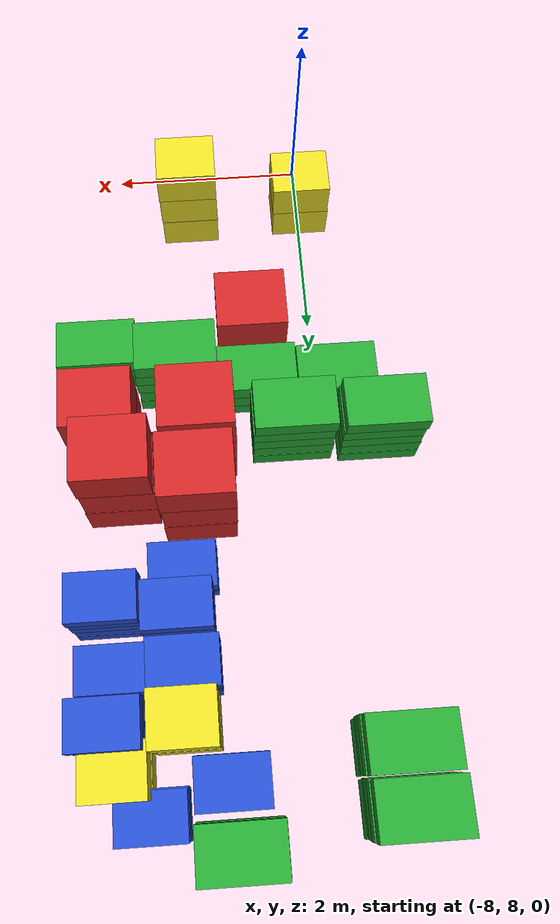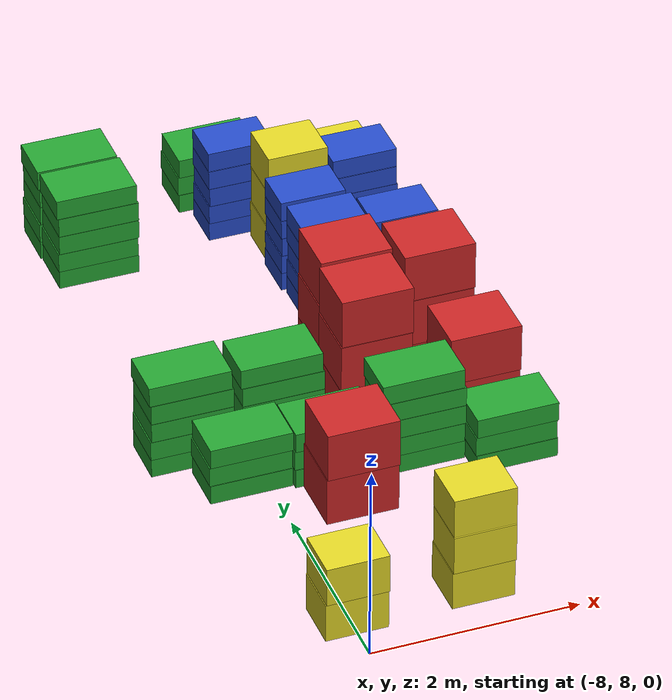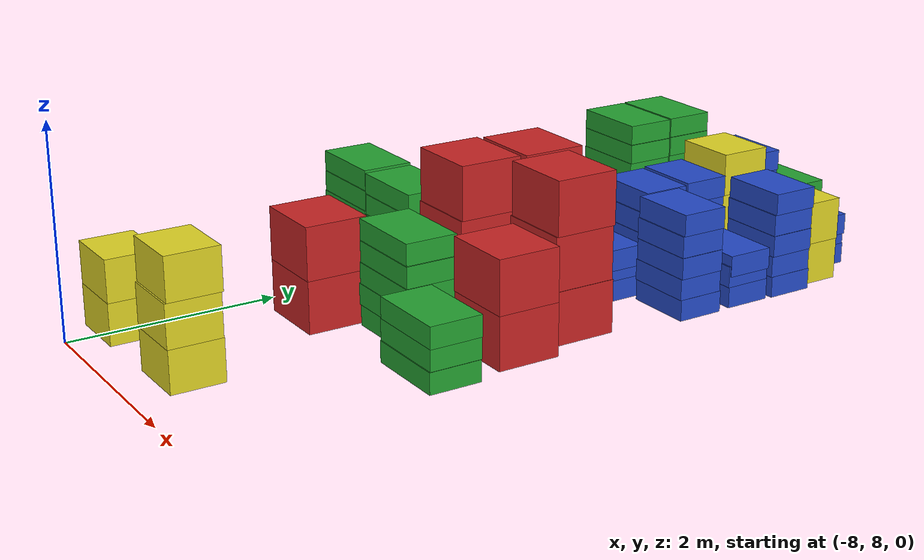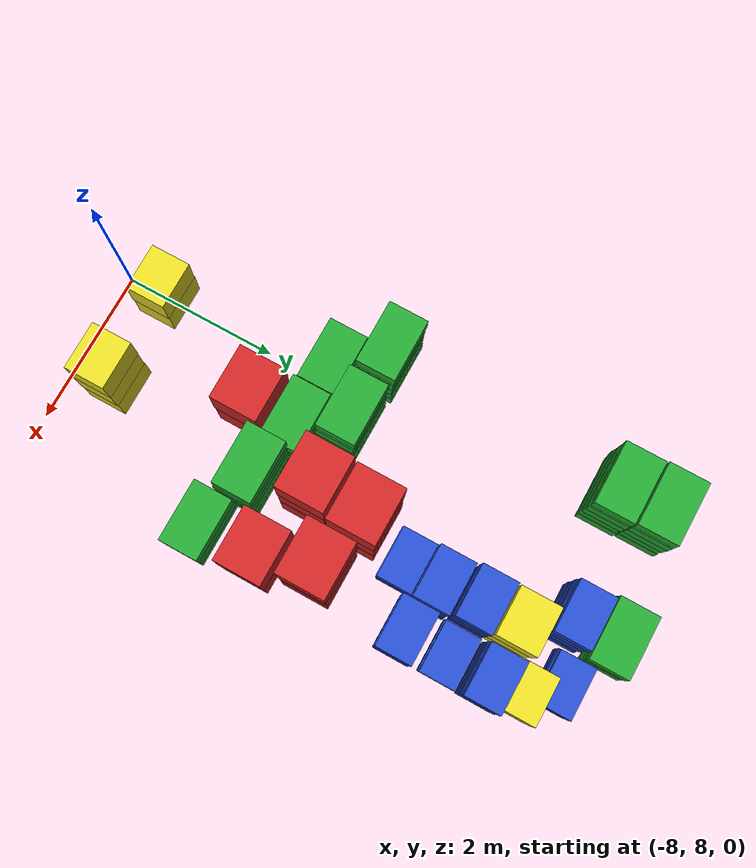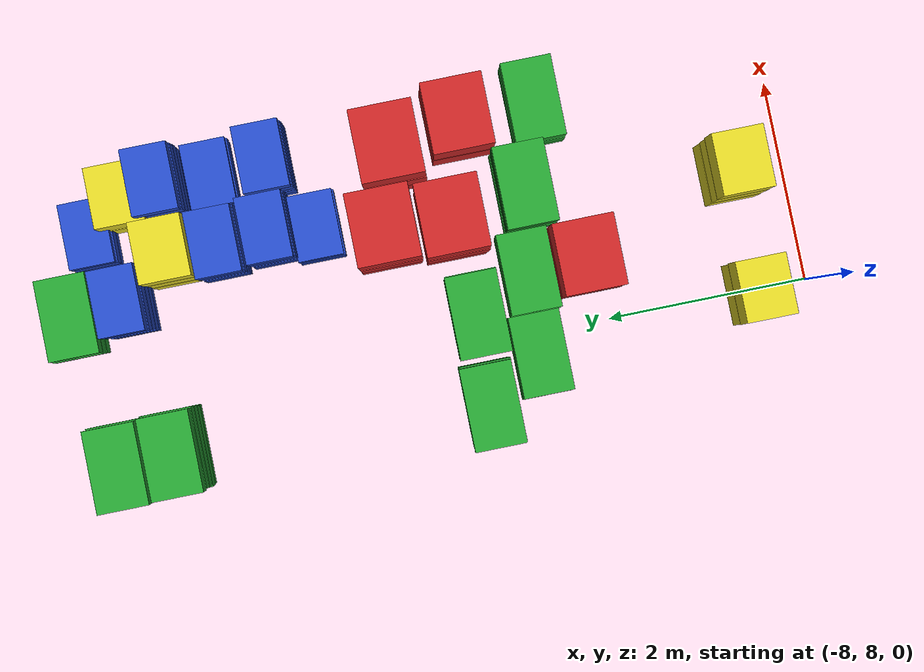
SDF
<sdf version="1.6">
 <world name="default">
  <include><uri>model://sun</uri></include>
  <model name="baggage_C_x2_22">
   <model name="baggage_C_0">
    <static>1</static>
    <link name="link">
     <collision name="collision"><geometry><box><size>0.6 0.5 0.4</size></box></geometry></collision>
     <visual name="visual">
      <geometry><box><size>0.6 0.5 0.4</size></box></geometry>
      <material>
       <script><uri>file://media/materials/scripts/gazebo.material</uri><name>Gazebo/Yellow</name></script>
      </material>
     </visual>
    </link>
    <pose>0 0 0.2 0 -0 0</pose>
   </model>
   <model name="baggage_C_1">
    <static>1</static>
    <link name="link">
     <collision name="collision"><geometry><box><size>0.6 0.5 0.4</size></box></geometry></collision>
     <visual name="visual">
      <geometry><box><size>0.6 0.5 0.4</size></box></geometry>
      <material>
       <script><uri>file://media/materials/scripts/gazebo.material</uri><name>Gazebo/Yellow</name></script>
      </material>
     </visual>
    </link>
    <pose>0.0093 -0.002 0.6 0 -0 0</pose>
   </model>
   <pose>-8.00907 8.54859 0 0 -0 0</pose>
  </model>
  <model name="baggage_C_x3_26">
   <model name="baggage_C_0">
    <static>1</static>
    <link name="link">
     <collision name="collision"><geometry><box><size>0.6 0.5 0.4</size></box></geometry></collision>
     <visual name="visual">
      <geometry><box><size>0.6 0.5 0.4</size></box></geometry>
      <material>
       <script><uri>file://media/materials/scripts/gazebo.material</uri><name>Gazebo/Yellow</name></script>
      </material>
     </visual>
    </link>
    <pose>0 0 0.2 0 -0 0</pose>
   </model>
   <model name="baggage_C_1">
    <static>1</static>
    <link name="link">
     <collision name="collision"><geometry><box><size>0.6 0.5 0.4</size></box></geometry></collision>
     <visual name="visual">
      <geometry><box><size>0.6 0.5 0.4</size></box></geometry>
      <material>
       <script><uri>file://media/materials/scripts/gazebo.material</uri><name>Gazebo/Yellow</name></script>
      </material>
     </visual>
    </link>
    <pose>0.0062 -0.0069 0.6 0 -0 0</pose>
   </model>
   <model name="baggage_C_2">
    <static>1</static>
    <link name="link">
     <collision name="collision"><geometry><box><size>0.6 0.5 0.4</size></box></geometry></collision>
     <visual name="visual">
      <geometry><box><size>0.6 0.5 0.4</size></box></geometry>
      <material>
       <script><uri>file://media/materials/scripts/gazebo.material</uri><name>Gazebo/Yellow</name></script>
      </material>
     </visual>
    </link>
    <pose>0.0089 0.0083 1 0 -0 0</pose>
   </model>
   <pose>-6.78982 8.58261 0 0 -0 0</pose>
  </model>
  <model name="baggage_D_x5_11">
   <model name="baggage_D_0">
    <static>1</static>
    <link name="link">
     <collision name="collision"><geometry><box><size>0.8 0.5 0.2</size></box></geometry></collision>
     <visual name="visual">
      <geometry><box><size>0.8 0.5 0.2</size></box></geometry>
      <material>
       <script><uri>file://media/materials/scripts/gazebo.material</uri><name>Gazebo/Green</name></script>
      </material>
     </visual>
    </link>
    <pose>0 0 0.1 0 -0 0</pose>
   </model>
   <model name="baggage_D_1">
    <static>1</static>
    <link name="link">
     <collision name="collision"><geometry><box><size>0.8 0.5 0.2</size></box></geometry></collision>
     <visual name="visual">
      <geometry><box><size>0.8 0.5 0.2</size></box></geometry>
      <material>
       <script><uri>file://media/materials/scripts/gazebo.material</uri><name>Gazebo/Green</name></script>
      </material>
     </visual>
    </link>
    <pose>-0.0065 -0.0092 0.3 0 -0 0</pose>
   </model>
   <model name="baggage_D_2">
    <static>1</static>
    <link name="link">
     <collision name="collision"><geometry><box><size>0.8 0.5 0.2</size></box></geometry></collision>
     <visual name="visual">
      <geometry><box><size>0.8 0.5 0.2</size></box></geometry>
      <material>
       <script><uri>file://media/materials/scripts/gazebo.material</uri><name>Gazebo/Green</name></script>
      </material>
     </visual>
    </link>
    <pose>0.005 -0.0052 0.5 0 -0 0</pose>
   </model>
   <model name="baggage_D_3">
    <static>1</static>
    <link name="link">
     <collision name="collision"><geometry><box><size>0.8 0.5 0.2</size></box></geometry></collision>
     <visual name="visual">
      <geometry><box><size>0.8 0.5 0.2</size></box></geometry>
      <material>
       <script><uri>file://media/materials/scripts/gazebo.material</uri><name>Gazebo/Green</name></script>
      </material>
     </visual>
    </link>
    <pose>0.0074 0.0002 0.7 0 -0 0</pose>
   </model>
   <model name="baggage_D_4">
    <static>1</static>
    <link name="link">
     <collision name="collision"><geometry><box><size>0.8 0.5 0.2</size></box></geometry></collision>
     <visual name="visual">
      <geometry><box><size>0.8 0.5 0.2</size></box></geometry>
      <material>
       <script><uri>file://media/materials/scripts/gazebo.material</uri><name>Gazebo/Green</name></script>
      </material>
     </visual>
    </link>
    <pose>-0.006 0.0081 0.9 0 -0 0</pose>
   </model>
   <pose>-8.56957 11.334 0 0 -0 0</pose>
  </model>
  <model name="baggage_D_x5_12">
   <model name="baggage_D_0">
    <static>1</static>
    <link name="link">
     <collision name="collision"><geometry><box><size>0.8 0.5 0.2</size></box></geometry></collision>
     <visual name="visual">
      <geometry><box><size>0.8 0.5 0.2</size></box></geometry>
      <material>
       <script><uri>file://media/materials/scripts/gazebo.material</uri><name>Gazebo/Green</name></script>
      </material>
     </visual>
    </link>
    <pose>0 0 0.1 0 -0 0</pose>
   </model>
   <model name="baggage_D_1">
    <static>1</static>
    <link name="link">
     <collision name="collision"><geometry><box><size>0.8 0.5 0.2</size></box></geometry></collision>
     <visual name="visual">
      <geometry><box><size>0.8 0.5 0.2</size></box></geometry>
      <material>
       <script><uri>file://media/materials/scripts/gazebo.material</uri><name>Gazebo/Green</name></script>
      </material>
     </visual>
    </link>
    <pose>-0.0065 -0.0092 0.3 0 -0 0</pose>
   </model>
   <model name="baggage_D_2">
    <static>1</static>
    <link name="link">
     <collision name="collision"><geometry><box><size>0.8 0.5 0.2</size></box></geometry></collision>
     <visual name="visual">
      <geometry><box><size>0.8 0.5 0.2</size></box></geometry>
      <material>
       <script><uri>file://media/materials/scripts/gazebo.material</uri><name>Gazebo/Green</name></script>
      </material>
     </visual>
    </link>
    <pose>0.005 -0.0052 0.5 0 -0 0</pose>
   </model>
   <model name="baggage_D_3">
    <static>1</static>
    <link name="link">
     <collision name="collision"><geometry><box><size>0.8 0.5 0.2</size></box></geometry></collision>
     <visual name="visual">
      <geometry><box><size>0.8 0.5 0.2</size></box></geometry>
      <material>
       <script><uri>file://media/materials/scripts/gazebo.material</uri><name>Gazebo/Green</name></script>
      </material>
     </visual>
    </link>
    <pose>0.0074 0.0002 0.7 0 -0 0</pose>
   </model>
   <model name="baggage_D_4">
    <static>1</static>
    <link name="link">
     <collision name="collision"><geometry><box><size>0.8 0.5 0.2</size></box></geometry></collision>
     <visual name="visual">
      <geometry><box><size>0.8 0.5 0.2</size></box></geometry>
      <material>
       <script><uri>file://media/materials/scripts/gazebo.material</uri><name>Gazebo/Green</name></script>
      </material>
     </visual>
    </link>
    <pose>-0.006 0.0081 0.9 0 -0 0</pose>
   </model>
   <pose>-7.69601 11.2985 0 0 -0 0</pose>
  </model>
  <model name="baggage_D_x3_12">
   <model name="baggage_D_0">
    <static>1</static>
    <link name="link">
     <collision name="collision"><geometry><box><size>0.8 0.5 0.2</size></box></geometry></collision>
     <visual name="visual">
      <geometry><box><size>0.8 0.5 0.2</size></box></geometry>
      <material>
       <script><uri>file://media/materials/scripts/gazebo.material</uri><name>Gazebo/Green</name></script>
      </material>
     </visual>
    </link>
    <pose>0 0 0.1 0 -0 0</pose>
   </model>
   <model name="baggage_D_1">
    <static>1</static>
    <link name="link">
     <collision name="collision"><geometry><box><size>0.8 0.5 0.2</size></box></geometry></collision>
     <visual name="visual">
      <geometry><box><size>0.8 0.5 0.2</size></box></geometry>
      <material>
       <script><uri>file://media/materials/scripts/gazebo.material</uri><name>Gazebo/Green</name></script>
      </material>
     </visual>
    </link>
    <pose>-0.0056 0.0083 0.3 0 -0 0</pose>
   </model>
   <model name="baggage_D_2">
    <static>1</static>
    <link name="link">
     <collision name="collision"><geometry><box><size>0.8 0.5 0.2</size></box></geometry></collision>
     <visual name="visual">
      <geometry><box><size>0.8 0.5 0.2</size></box></geometry>
      <material>
       <script><uri>file://media/materials/scripts/gazebo.material</uri><name>Gazebo/Green</name></script>
      </material>
     </visual>
    </link>
    <pose>0.0053 0.0057 0.5 0 -0 0</pose>
   </model>
   <pose>-8.19713 10.7661 0 0 -0 0</pose>
  </model>
  <model name="baggage_D_x3_13">
   <model name="baggage_D_0">
    <static>1</static>
    <link name="link">
     <collision name="collision"><geometry><box><size>0.8 0.5 0.2</size></box></geometry></collision>
     <visual name="visual">
      <geometry><box><size>0.8 0.5 0.2</size></box></geometry>
      <material>
       <script><uri>file://media/materials/scripts/gazebo.material</uri><name>Gazebo/Green</name></script>
      </material>
     </visual>
    </link>
    <pose>0 0 0.1 0 -0 0</pose>
   </model>
   <model name="baggage_D_1">
    <static>1</static>
    <link name="link">
     <collision name="collision"><geometry><box><size>0.8 0.5 0.2</size></box></geometry></collision>
     <visual name="visual">
      <geometry><box><size>0.8 0.5 0.2</size></box></geometry>
      <material>
       <script><uri>file://media/materials/scripts/gazebo.material</uri><name>Gazebo/Green</name></script>
      </material>
     </visual>
    </link>
    <pose>-0.0056 0.0083 0.3 0 -0 0</pose>
   </model>
   <model name="baggage_D_2">
    <static>1</static>
    <link name="link">
     <collision name="collision"><geometry><box><size>0.8 0.5 0.2</size></box></geometry></collision>
     <visual name="visual">
      <geometry><box><size>0.8 0.5 0.2</size></box></geometry>
      <material>
       <script><uri>file://media/materials/scripts/gazebo.material</uri><name>Gazebo/Green</name></script>
      </material>
     </visual>
    </link>
    <pose>0.0053 0.0057 0.5 0 -0 0</pose>
   </model>
   <pose>-7.38778 10.7233 0 0 -0 0</pose>
  </model>
  <model name="baggage_D_x5_13">
   <model name="baggage_D_0">
    <static>1</static>
    <link name="link">
     <collision name="collision"><geometry><box><size>0.8 0.5 0.2</size></box></geometry></collision>
     <visual name="visual">
      <geometry><box><size>0.8 0.5 0.2</size></box></geometry>
      <material>
       <script><uri>file://media/materials/scripts/gazebo.material</uri><name>Gazebo/Green</name></script>
      </material>
     </visual>
    </link>
    <pose>0 0 0.1 0 -0 0</pose>
   </model>
   <model name="baggage_D_1">
    <static>1</static>
    <link name="link">
     <collision name="collision"><geometry><box><size>0.8 0.5 0.2</size></box></geometry></collision>
     <visual name="visual">
      <geometry><box><size>0.8 0.5 0.2</size></box></geometry>
      <material>
       <script><uri>file://media/materials/scripts/gazebo.material</uri><name>Gazebo/Green</name></script>
      </material>
     </visual>
    </link>
    <pose>-0.0065 -0.0092 0.3 0 -0 0</pose>
   </model>
   <model name="baggage_D_2">
    <static>1</static>
    <link name="link">
     <collision name="collision"><geometry><box><size>0.8 0.5 0.2</size></box></geometry></collision>
     <visual name="visual">
      <geometry><box><size>0.8 0.5 0.2</size></box></geometry>
      <material>
       <script><uri>file://media/materials/scripts/gazebo.material</uri><name>Gazebo/Green</name></script>
      </material>
     </visual>
    </link>
    <pose>0.005 -0.0052 0.5 0 -0 0</pose>
   </model>
   <model name="baggage_D_3">
    <static>1</static>
    <link name="link">
     <collision name="collision"><geometry><box><size>0.8 0.5 0.2</size></box></geometry></collision>
     <visual name="visual">
      <geometry><box><size>0.8 0.5 0.2</size></box></geometry>
      <material>
       <script><uri>file://media/materials/scripts/gazebo.material</uri><name>Gazebo/Green</name></script>
      </material>
     </visual>
    </link>
    <pose>0.0074 0.0002 0.7 0 -0 0</pose>
   </model>
   <model name="baggage_D_4">
    <static>1</static>
    <link name="link">
     <collision name="collision"><geometry><box><size>0.8 0.5 0.2</size></box></geometry></collision>
     <visual name="visual">
      <geometry><box><size>0.8 0.5 0.2</size></box></geometry>
      <material>
       <script><uri>file://media/materials/scripts/gazebo.material</uri><name>Gazebo/Green</name></script>
      </material>
     </visual>
    </link>
    <pose>-0.006 0.0081 0.9 0 -0 0</pose>
   </model>
   <pose>-6.57089 10.6133 0 0 -0 0</pose>
  </model>
  <model name="baggage_A_x2_14">
   <model name="baggage_A_0">
    <static>1</static>
    <link name="link">
     <collision name="collision"><geometry><box><size>0.7 0.6 0.5</size></box></geometry></collision>
     <visual name="visual">
      <geometry><box><size>0.7 0.6 0.5</size></box></geometry>
      <material>
       <script><uri>file://media/materials/scripts/gazebo.material</uri><name>Gazebo/Red</name></script>
      </material>
     </visual>
    </link>
    <pose>0 0 0.25 0 -0 0</pose>
   </model>
   <model name="baggage_A_1">
    <static>1</static>
    <link name="link">
     <collision name="collision"><geometry><box><size>0.7 0.6 0.5</size></box></geometry></collision>
     <visual name="visual">
      <geometry><box><size>0.7 0.6 0.5</size></box></geometry>
      <material>
       <script><uri>file://media/materials/scripts/gazebo.material</uri><name>Gazebo/Red</name></script>
      </material>
     </visual>
    </link>
    <pose>0.0063 -0.0062 0.75 0 -0 0</pose>
   </model>
   <pose>-7.36037 10.1652 0 0 -0 0</pose>
  </model>
  <model name="baggage_D_x3_14">
   <model name="baggage_D_0">
    <static>1</static>
    <link name="link">
     <collision name="collision"><geometry><box><size>0.8 0.5 0.2</size></box></geometry></collision>
     <visual name="visual">
      <geometry><box><size>0.8 0.5 0.2</size></box></geometry>
      <material>
       <script><uri>file://media/materials/scripts/gazebo.material</uri><name>Gazebo/Green</name></script>
      </material>
     </visual>
    </link>
    <pose>0 0 0.1 0 -0 0</pose>
   </model>
   <model name="baggage_D_1">
    <static>1</static>
    <link name="link">
     <collision name="collision"><geometry><box><size>0.8 0.5 0.2</size></box></geometry></collision>
     <visual name="visual">
      <geometry><box><size>0.8 0.5 0.2</size></box></geometry>
      <material>
       <script><uri>file://media/materials/scripts/gazebo.material</uri><name>Gazebo/Green</name></script>
      </material>
     </visual>
    </link>
    <pose>-0.0056 0.0083 0.3 0 -0 0</pose>
   </model>
   <model name="baggage_D_2">
    <static>1</static>
    <link name="link">
     <collision name="collision"><geometry><box><size>0.8 0.5 0.2</size></box></geometry></collision>
     <visual name="visual">
      <geometry><box><size>0.8 0.5 0.2</size></box></geometry>
      <material>
       <script><uri>file://media/materials/scripts/gazebo.material</uri><name>Gazebo/Green</name></script>
      </material>
     </visual>
    </link>
    <pose>0.0053 0.0057 0.5 0 -0 0</pose>
   </model>
   <pose>-5.75961 10.3463 0 0 -0 0</pose>
  </model>
  <model name="baggage_D_x5_17">
   <model name="baggage_D_0">
    <static>1</static>
    <link name="link">
     <collision name="collision"><geometry><box><size>0.8 0.5 0.2</size></box></geometry></collision>
     <visual name="visual">
      <geometry><box><size>0.8 0.5 0.2</size></box></geometry>
      <material>
       <script><uri>file://media/materials/scripts/gazebo.material</uri><name>Gazebo/Green</name></script>
      </material>
     </visual>
    </link>
    <pose>0 0 0.1 0 -0 0</pose>
   </model>
   <model name="baggage_D_1">
    <static>1</static>
    <link name="link">
     <collision name="collision"><geometry><box><size>0.8 0.5 0.2</size></box></geometry></collision>
     <visual name="visual">
      <geometry><box><size>0.8 0.5 0.2</size></box></geometry>
      <material>
       <script><uri>file://media/materials/scripts/gazebo.material</uri><name>Gazebo/Green</name></script>
      </material>
     </visual>
    </link>
    <pose>-0.0065 -0.0092 0.3 0 -0 0</pose>
   </model>
   <model name="baggage_D_2">
    <static>1</static>
    <link name="link">
     <collision name="collision"><geometry><box><size>0.8 0.5 0.2</size></box></geometry></collision>
     <visual name="visual">
      <geometry><box><size>0.8 0.5 0.2</size></box></geometry>
      <material>
       <script><uri>file://media/materials/scripts/gazebo.material</uri><name>Gazebo/Green</name></script>
      </material>
     </visual>
    </link>
    <pose>0.005 -0.0052 0.5 0 -0 0</pose>
   </model>
   <model name="baggage_D_3">
    <static>1</static>
    <link name="link">
     <collision name="collision"><geometry><box><size>0.8 0.5 0.2</size></box></geometry></collision>
     <visual name="visual">
      <geometry><box><size>0.8 0.5 0.2</size></box></geometry>
      <material>
       <script><uri>file://media/materials/scripts/gazebo.material</uri><name>Gazebo/Green</name></script>
      </material>
     </visual>
    </link>
    <pose>0.0074 0.0002 0.7 0 -0 0</pose>
   </model>
   <model name="baggage_D_4">
    <static>1</static>
    <link name="link">
     <collision name="collision"><geometry><box><size>0.8 0.5 0.2</size></box></geometry></collision>
     <visual name="visual">
      <geometry><box><size>0.8 0.5 0.2</size></box></geometry>
      <material>
       <script><uri>file://media/materials/scripts/gazebo.material</uri><name>Gazebo/Green</name></script>
      </material>
     </visual>
    </link>
    <pose>-0.006 0.0081 0.9 0 -0 0</pose>
   </model>
   <pose>-8.43464 14.9416 0 0 -0 0</pose>
  </model>
  <model name="baggage_D_x5_18">
   <model name="baggage_D_0">
    <static>1</static>
    <link name="link">
     <collision name="collision"><geometry><box><size>0.8 0.5 0.2</size></box></geometry></collision>
     <visual name="visual">
      <geometry><box><size>0.8 0.5 0.2</size></box></geometry>
      <material>
       <script><uri>file://media/materials/scripts/gazebo.material</uri><name>Gazebo/Green</name></script>
      </material>
     </visual>
    </link>
    <pose>0 0 0.1 0 -0 0</pose>
   </model>
   <model name="baggage_D_1">
    <static>1</static>
    <link name="link">
     <collision name="collision"><geometry><box><size>0.8 0.5 0.2</size></box></geometry></collision>
     <visual name="visual">
      <geometry><box><size>0.8 0.5 0.2</size></box></geometry>
      <material>
       <script><uri>file://media/materials/scripts/gazebo.material</uri><name>Gazebo/Green</name></script>
      </material>
     </visual>
    </link>
    <pose>-0.0065 -0.0092 0.3 0 -0 0</pose>
   </model>
   <model name="baggage_D_2">
    <static>1</static>
    <link name="link">
     <collision name="collision"><geometry><box><size>0.8 0.5 0.2</size></box></geometry></collision>
     <visual name="visual">
      <geometry><box><size>0.8 0.5 0.2</size></box></geometry>
      <material>
       <script><uri>file://media/materials/scripts/gazebo.material</uri><name>Gazebo/Green</name></script>
      </material>
     </visual>
    </link>
    <pose>0.005 -0.0052 0.5 0 -0 0</pose>
   </model>
   <model name="baggage_D_3">
    <static>1</static>
    <link name="link">
     <collision name="collision"><geometry><box><size>0.8 0.5 0.2</size></box></geometry></collision>
     <visual name="visual">
      <geometry><box><size>0.8 0.5 0.2</size></box></geometry>
      <material>
       <script><uri>file://media/materials/scripts/gazebo.material</uri><name>Gazebo/Green</name></script>
      </material>
     </visual>
    </link>
    <pose>0.0074 0.0002 0.7 0 -0 0</pose>
   </model>
   <model name="baggage_D_4">
    <static>1</static>
    <link name="link">
     <collision name="collision"><geometry><box><size>0.8 0.5 0.2</size></box></geometry></collision>
     <visual name="visual">
      <geometry><box><size>0.8 0.5 0.2</size></box></geometry>
      <material>
       <script><uri>file://media/materials/scripts/gazebo.material</uri><name>Gazebo/Green</name></script>
      </material>
     </visual>
    </link>
    <pose>-0.006 0.0081 0.9 0 -0 0</pose>
   </model>
   <pose>-8.42027 14.416 0 0 -0 0</pose>
  </model>
  <model name="baggage_D_x3_36">
   <model name="baggage_D_0">
    <static>1</static>
    <link name="link">
     <collision name="collision"><geometry><box><size>0.8 0.5 0.2</size></box></geometry></collision>
     <visual name="visual">
      <geometry><box><size>0.8 0.5 0.2</size></box></geometry>
      <material>
       <script><uri>file://media/materials/scripts/gazebo.material</uri><name>Gazebo/Green</name></script>
      </material>
     </visual>
    </link>
    <pose>0 0 0.1 0 -0 0</pose>
   </model>
   <model name="baggage_D_1">
    <static>1</static>
    <link name="link">
     <collision name="collision"><geometry><box><size>0.8 0.5 0.2</size></box></geometry></collision>
     <visual name="visual">
      <geometry><box><size>0.8 0.5 0.2</size></box></geometry>
      <material>
       <script><uri>file://media/materials/scripts/gazebo.material</uri><name>Gazebo/Green</name></script>
      </material>
     </visual>
    </link>
    <pose>-0.0056 0.0083 0.3 0 -0 0</pose>
   </model>
   <model name="baggage_D_2">
    <static>1</static>
    <link name="link">
     <collision name="collision"><geometry><box><size>0.8 0.5 0.2</size></box></geometry></collision>
     <visual name="visual">
      <geometry><box><size>0.8 0.5 0.2</size></box></geometry>
      <material>
       <script><uri>file://media/materials/scripts/gazebo.material</uri><name>Gazebo/Green</name></script>
      </material>
     </visual>
    </link>
    <pose>0.0053 0.0057 0.5 0 -0 0</pose>
   </model>
   <pose>-6.935990 15.201237 0 0 -0 0</pose>
  </model>
  <model name="baggage_A_x2_32">
   <model name="baggage_A_0">
    <static>1</static>
    <link name="link">
     <collision name="collision"><geometry><box><size>0.7 0.6 0.5</size></box></geometry></collision>
     <visual name="visual">
      <geometry><box><size>0.7 0.6 0.5</size></box></geometry>
      <material>
       <script><uri>file://media/materials/scripts/gazebo.material</uri><name>Gazebo/Red</name></script>
      </material>
     </visual>
    </link>
    <pose>0 0 0.25 0 -0 0</pose>
   </model>
   <model name="baggage_A_1">
    <static>1</static>
    <link name="link">
     <collision name="collision"><geometry><box><size>0.7 0.6 0.5</size></box></geometry></collision>
     <visual name="visual">
      <geometry><box><size>0.7 0.6 0.5</size></box></geometry>
      <material>
       <script><uri>file://media/materials/scripts/gazebo.material</uri><name>Gazebo/Red</name></script>
      </material>
     </visual>
    </link>
    <pose>0.0063 -0.0062 0.75 0 -0 0</pose>
   </model>
   <pose>-5.79576 11.126 0 0 -0 0</pose>
  </model>
  <model name="baggage_A_x3_29">
   <model name="baggage_A_0">
    <static>1</static>
    <link name="link">
     <collision name="collision"><geometry><box><size>0.7 0.6 0.5</size></box></geometry></collision>
     <visual name="visual">
      <geometry><box><size>0.7 0.6 0.5</size></box></geometry>
      <material>
       <script><uri>file://media/materials/scripts/gazebo.material</uri><name>Gazebo/Red</name></script>
      </material>
     </visual>
    </link>
    <pose>0 0 0.25 0 -0 0</pose>
   </model>
   <model name="baggage_A_1">
    <static>1</static>
    <link name="link">
     <collision name="collision"><geometry><box><size>0.7 0.6 0.5</size></box></geometry></collision>
     <visual name="visual">
      <geometry><box><size>0.7 0.6 0.5</size></box></geometry>
      <material>
       <script><uri>file://media/materials/scripts/gazebo.material</uri><name>Gazebo/Red</name></script>
      </material>
     </visual>
    </link>
    <pose>-0.006 -0.0077 0.75 0 -0 0</pose>
   </model>
   <model name="baggage_A_2">
    <static>1</static>
    <link name="link">
     <collision name="collision"><geometry><box><size>0.7 0.6 0.5</size></box></geometry></collision>
     <visual name="visual">
      <geometry><box><size>0.7 0.6 0.5</size></box></geometry>
      <material>
       <script><uri>file://media/materials/scripts/gazebo.material</uri><name>Gazebo/Red</name></script>
      </material>
     </visual>
    </link>
    <pose>0.0045 0.0005 1.25 0 -0 0</pose>
   </model>
   <pose>-6.76523 11.3758 0 0 -0 0</pose>
  </model>
  <model name="baggage_A_x3_30">
   <model name="baggage_A_0">
    <static>1</static>
    <link name="link">
     <collision name="collision"><geometry><box><size>0.7 0.6 0.5</size></box></geometry></collision>
     <visual name="visual">
      <geometry><box><size>0.7 0.6 0.5</size></box></geometry>
      <material>
       <script><uri>file://media/materials/scripts/gazebo.material</uri><name>Gazebo/Red</name></script>
      </material>
     </visual>
    </link>
    <pose>0 0 0.25 0 -0 0</pose>
   </model>
   <model name="baggage_A_1">
    <static>1</static>
    <link name="link">
     <collision name="collision"><geometry><box><size>0.7 0.6 0.5</size></box></geometry></collision>
     <visual name="visual">
      <geometry><box><size>0.7 0.6 0.5</size></box></geometry>
      <material>
       <script><uri>file://media/materials/scripts/gazebo.material</uri><name>Gazebo/Red</name></script>
      </material>
     </visual>
    </link>
    <pose>-0.006 -0.0077 0.75 0 -0 0</pose>
   </model>
   <model name="baggage_A_2">
    <static>1</static>
    <link name="link">
     <collision name="collision"><geometry><box><size>0.7 0.6 0.5</size></box></geometry></collision>
     <visual name="visual">
      <geometry><box><size>0.7 0.6 0.5</size></box></geometry>
      <material>
       <script><uri>file://media/materials/scripts/gazebo.material</uri><name>Gazebo/Red</name></script>
      </material>
     </visual>
    </link>
    <pose>0.0045 0.0005 1.25 0 -0 0</pose>
   </model>
   <pose>-5.97688 11.8333 0 0 -0 0</pose>
  </model>
  <model name="baggage_A_x3_31">
   <model name="baggage_A_0">
    <static>1</static>
    <link name="link">
     <collision name="collision"><geometry><box><size>0.7 0.6 0.5</size></box></geometry></collision>
     <visual name="visual">
      <geometry><box><size>0.7 0.6 0.5</size></box></geometry>
      <material>
       <script><uri>file://media/materials/scripts/gazebo.material</uri><name>Gazebo/Red</name></script>
      </material>
     </visual>
    </link>
    <pose>0 0 0.25 0 -0 0</pose>
   </model>
   <model name="baggage_A_1">
    <static>1</static>
    <link name="link">
     <collision name="collision"><geometry><box><size>0.7 0.6 0.5</size></box></geometry></collision>
     <visual name="visual">
      <geometry><box><size>0.7 0.6 0.5</size></box></geometry>
      <material>
       <script><uri>file://media/materials/scripts/gazebo.material</uri><name>Gazebo/Red</name></script>
      </material>
     </visual>
    </link>
    <pose>-0.006 -0.0077 0.75 0 -0 0</pose>
   </model>
   <model name="baggage_A_2">
    <static>1</static>
    <link name="link">
     <collision name="collision"><geometry><box><size>0.7 0.6 0.5</size></box></geometry></collision>
     <visual name="visual">
      <geometry><box><size>0.7 0.6 0.5</size></box></geometry>
      <material>
       <script><uri>file://media/materials/scripts/gazebo.material</uri><name>Gazebo/Red</name></script>
      </material>
     </visual>
    </link>
    <pose>0.0045 0.0005 1.25 0 -0 0</pose>
   </model>
   <pose>-6.72921 12.0202 0 0 -0 0</pose>
  </model>
  <model name="baggage_B_x3_34">
   <model name="baggage_B_0">
    <static>1</static>
    <link name="link">
     <collision name="collision"><geometry><box><size>0.65 0.45 0.2</size></box></geometry></collision>
     <visual name="visual">
      <geometry><box><size>0.65 0.45 0.2</size></box></geometry>
      <material>
       <script><uri>file://media/materials/scripts/gazebo.material</uri><name>Gazebo/Blue</name></script>
      </material>
     </visual>
    </link>
    <pose>0 0 0.1 0 -0 0</pose>
   </model>
   <model name="baggage_B_1">
    <static>1</static>
    <link name="link">
     <collision name="collision"><geometry><box><size>0.65 0.45 0.2</size></box></geometry></collision>
     <visual name="visual">
      <geometry><box><size>0.65 0.45 0.2</size></box></geometry>
      <material>
       <script><uri>file://media/materials/scripts/gazebo.material</uri><name>Gazebo/Blue</name></script>
      </material>
     </visual>
    </link>
    <pose>0.0028 -0.0086 0.3 0 -0 0</pose>
   </model>
   <model name="baggage_B_2">
    <static>1</static>
    <link name="link">
     <collision name="collision"><geometry><box><size>0.65 0.45 0.2</size></box></geometry></collision>
     <visual name="visual">
      <geometry><box><size>0.65 0.45 0.2</size></box></geometry>
      <material>
       <script><uri>file://media/materials/scripts/gazebo.material</uri><name>Gazebo/Blue</name></script>
      </material>
     </visual>
    </link>
    <pose>0.0092 0.006 0.4 0 -0 0</pose>
   </model>
   <pose>-6.54002 12.6749 0 0 -0 0</pose>
  </model>
  <model name="baggage_B_x5_25">
   <model name="baggage_B_0">
    <static>1</static>
    <link name="link">
     <collision name="collision"><geometry><box><size>0.65 0.45 0.2</size></box></geometry></collision>
     <visual name="visual">
      <geometry><box><size>0.65 0.45 0.2</size></box></geometry>
      <material>
       <script><uri>file://media/materials/scripts/gazebo.material</uri><name>Gazebo/Blue</name></script>
      </material>
     </visual>
    </link>
    <pose>0 0 0.1 0 -0 0</pose>
   </model>
   <model name="baggage_B_1">
    <static>1</static>
    <link name="link">
     <collision name="collision"><geometry><box><size>0.65 0.45 0.2</size></box></geometry></collision>
     <visual name="visual">
      <geometry><box><size>0.65 0.45 0.2</size></box></geometry>
      <material>
       <script><uri>file://media/materials/scripts/gazebo.material</uri><name>Gazebo/Blue</name></script>
      </material>
     </visual>
    </link>
    <pose>-0.0014 -0.0091 0.3 0 -0 0</pose>
   </model>
   <model name="baggage_B_2">
    <static>1</static>
    <link name="link">
     <collision name="collision"><geometry><box><size>0.65 0.45 0.2</size></box></geometry></collision>
     <visual name="visual">
      <geometry><box><size>0.65 0.45 0.2</size></box></geometry>
      <material>
       <script><uri>file://media/materials/scripts/gazebo.material</uri><name>Gazebo/Blue</name></script>
      </material>
     </visual>
    </link>
    <pose>0.0076 -0.0066 0.5 0 -0 0</pose>
   </model>
   <model name="baggage_B_3">
    <static>1</static>
    <link name="link">
     <collision name="collision"><geometry><box><size>0.65 0.45 0.2</size></box></geometry></collision>
     <visual name="visual">
      <geometry><box><size>0.65 0.45 0.2</size></box></geometry>
      <material>
       <script><uri>file://media/materials/scripts/gazebo.material</uri><name>Gazebo/Blue</name></script>
      </material>
     </visual>
    </link>
    <pose>0 -0.0032 0.7 0 -0 0</pose>
   </model>
   <model name="baggage_B_4">
    <static>1</static>
    <link name="link">
     <collision name="collision"><geometry><box><size>0.65 0.45 0.2</size></box></geometry></collision>
     <visual name="visual">
      <geometry><box><size>0.65 0.45 0.2</size></box></geometry>
      <material>
       <script><uri>file://media/materials/scripts/gazebo.material</uri><name>Gazebo/Blue</name></script>
      </material>
     </visual>
    </link>
    <pose>0.0023 0.0073 0.9 0 -0 0</pose>
   </model>
   <pose>-5.8203 13.029 0 0 -0 0</pose>
  </model>
  <model name="baggage_B_x5_26">
   <model name="baggage_B_0">
    <static>1</static>
    <link name="link">
     <collision name="collision"><geometry><box><size>0.65 0.45 0.2</size></box></geometry></collision>
     <visual name="visual">
      <geometry><box><size>0.65 0.45 0.2</size></box></geometry>
      <material>
       <script><uri>file://media/materials/scripts/gazebo.material</uri><name>Gazebo/Blue</name></script>
      </material>
     </visual>
    </link>
    <pose>0 0 0.1 0 -0 0</pose>
   </model>
   <model name="baggage_B_1">
    <static>1</static>
    <link name="link">
     <collision name="collision"><geometry><box><size>0.65 0.45 0.2</size></box></geometry></collision>
     <visual name="visual">
      <geometry><box><size>0.65 0.45 0.2</size></box></geometry>
      <material>
       <script><uri>file://media/materials/scripts/gazebo.material</uri><name>Gazebo/Blue</name></script>
      </material>
     </visual>
    </link>
    <pose>-0.0014 -0.0091 0.3 0 -0 0</pose>
   </model>
   <model name="baggage_B_2">
    <static>1</static>
    <link name="link">
     <collision name="collision"><geometry><box><size>0.65 0.45 0.2</size></box></geometry></collision>
     <visual name="visual">
      <geometry><box><size>0.65 0.45 0.2</size></box></geometry>
      <material>
       <script><uri>file://media/materials/scripts/gazebo.material</uri><name>Gazebo/Blue</name></script>
      </material>
     </visual>
    </link>
    <pose>0.0076 -0.0066 0.5 0 -0 0</pose>
   </model>
   <model name="baggage_B_3">
    <static>1</static>
    <link name="link">
     <collision name="collision"><geometry><box><size>0.65 0.45 0.2</size></box></geometry></collision>
     <visual name="visual">
      <geometry><box><size>0.65 0.45 0.2</size></box></geometry>
      <material>
       <script><uri>file://media/materials/scripts/gazebo.material</uri><name>Gazebo/Blue</name></script>
      </material>
     </visual>
    </link>
    <pose>0 -0.0032 0.7 0 -0 0</pose>
   </model>
   <model name="baggage_B_4">
    <static>1</static>
    <link name="link">
     <collision name="collision"><geometry><box><size>0.65 0.45 0.2</size></box></geometry></collision>
     <visual name="visual">
      <geometry><box><size>0.65 0.45 0.2</size></box></geometry>
      <material>
       <script><uri>file://media/materials/scripts/gazebo.material</uri><name>Gazebo/Blue</name></script>
      </material>
     </visual>
    </link>
    <pose>0.0023 0.0073 0.9 0 -0 0</pose>
   </model>
   <pose>-6.48909 13.1319 0 0 -0 0</pose>
  </model>
  <model name="baggage_B_x3_35">
   <model name="baggage_B_0">
    <static>1</static>
    <link name="link">
     <collision name="collision"><geometry><box><size>0.65 0.45 0.2</size></box></geometry></collision>
     <visual name="visual">
      <geometry><box><size>0.65 0.45 0.2</size></box></geometry>
      <material>
       <script><uri>file://media/materials/scripts/gazebo.material</uri><name>Gazebo/Blue</name></script>
      </material>
     </visual>
    </link>
    <pose>0 0 0.1 0 -0 0</pose>
   </model>
   <model name="baggage_B_1">
    <static>1</static>
    <link name="link">
     <collision name="collision"><geometry><box><size>0.65 0.45 0.2</size></box></geometry></collision>
     <visual name="visual">
      <geometry><box><size>0.65 0.45 0.2</size></box></geometry>
      <material>
       <script><uri>file://media/materials/scripts/gazebo.material</uri><name>Gazebo/Blue</name></script>
      </material>
     </visual>
    </link>
    <pose>0.0028 -0.0086 0.3 0 -0 0</pose>
   </model>
   <model name="baggage_B_2">
    <static>1</static>
    <link name="link">
     <collision name="collision"><geometry><box><size>0.65 0.45 0.2</size></box></geometry></collision>
     <visual name="visual">
      <geometry><box><size>0.65 0.45 0.2</size></box></geometry>
      <material>
       <script><uri>file://media/materials/scripts/gazebo.material</uri><name>Gazebo/Blue</name></script>
      </material>
     </visual>
    </link>
    <pose>0.0092 0.006 0.4 0 -0 0</pose>
   </model>
   <pose>-5.83633 13.5988 0 0 -0 0</pose>
  </model>
  <model name="baggage_B_x5_27">
   <model name="baggage_B_0">
    <static>1</static>
    <link name="link">
     <collision name="collision"><geometry><box><size>0.65 0.45 0.2</size></box></geometry></collision>
     <visual name="visual">
      <geometry><box><size>0.65 0.45 0.2</size></box></geometry>
      <material>
       <script><uri>file://media/materials/scripts/gazebo.material</uri><name>Gazebo/Blue</name></script>
      </material>
     </visual>
    </link>
    <pose>0 0 0.1 0 -0 0</pose>
   </model>
   <model name="baggage_B_1">
    <static>1</static>
    <link name="link">
     <collision name="collision"><geometry><box><size>0.65 0.45 0.2</size></box></geometry></collision>
     <visual name="visual">
      <geometry><box><size>0.65 0.45 0.2</size></box></geometry>
      <material>
       <script><uri>file://media/materials/scripts/gazebo.material</uri><name>Gazebo/Blue</name></script>
      </material>
     </visual>
    </link>
    <pose>-0.0014 -0.0091 0.3 0 -0 0</pose>
   </model>
   <model name="baggage_B_2">
    <static>1</static>
    <link name="link">
     <collision name="collision"><geometry><box><size>0.65 0.45 0.2</size></box></geometry></collision>
     <visual name="visual">
      <geometry><box><size>0.65 0.45 0.2</size></box></geometry>
      <material>
       <script><uri>file://media/materials/scripts/gazebo.material</uri><name>Gazebo/Blue</name></script>
      </material>
     </visual>
    </link>
    <pose>0.0076 -0.0066 0.5 0 -0 0</pose>
   </model>
   <model name="baggage_B_3">
    <static>1</static>
    <link name="link">
     <collision name="collision"><geometry><box><size>0.65 0.45 0.2</size></box></geometry></collision>
     <visual name="visual">
      <geometry><box><size>0.65 0.45 0.2</size></box></geometry>
      <material>
       <script><uri>file://media/materials/scripts/gazebo.material</uri><name>Gazebo/Blue</name></script>
      </material>
     </visual>
    </link>
    <pose>0 -0.0032 0.7 0 -0 0</pose>
   </model>
   <model name="baggage_B_4">
    <static>1</static>
    <link name="link">
     <collision name="collision"><geometry><box><size>0.65 0.45 0.2</size></box></geometry></collision>
     <visual name="visual">
      <geometry><box><size>0.65 0.45 0.2</size></box></geometry>
      <material>
       <script><uri>file://media/materials/scripts/gazebo.material</uri><name>Gazebo/Blue</name></script>
      </material>
     </visual>
    </link>
    <pose>0.0023 0.0073 0.9 0 -0 0</pose>
   </model>
   <pose>-6.52492 13.6327 0 0 -0 0</pose>
  </model>
  <model name="baggage_B_x5_28">
   <model name="baggage_B_0">
    <static>1</static>
    <link name="link">
     <collision name="collision"><geometry><box><size>0.65 0.45 0.2</size></box></geometry></collision>
     <visual name="visual">
      <geometry><box><size>0.65 0.45 0.2</size></box></geometry>
      <material>
       <script><uri>file://media/materials/scripts/gazebo.material</uri><name>Gazebo/Blue</name></script>
      </material>
     </visual>
    </link>
    <pose>0 0 0.1 0 -0 0</pose>
   </model>
   <model name="baggage_B_1">
    <static>1</static>
    <link name="link">
     <collision name="collision"><geometry><box><size>0.65 0.45 0.2</size></box></geometry></collision>
     <visual name="visual">
      <geometry><box><size>0.65 0.45 0.2</size></box></geometry>
      <material>
       <script><uri>file://media/materials/scripts/gazebo.material</uri><name>Gazebo/Blue</name></script>
      </material>
     </visual>
    </link>
    <pose>-0.0014 -0.0091 0.3 0 -0 0</pose>
   </model>
   <model name="baggage_B_2">
    <static>1</static>
    <link name="link">
     <collision name="collision"><geometry><box><size>0.65 0.45 0.2</size></box></geometry></collision>
     <visual name="visual">
      <geometry><box><size>0.65 0.45 0.2</size></box></geometry>
      <material>
       <script><uri>file://media/materials/scripts/gazebo.material</uri><name>Gazebo/Blue</name></script>
      </material>
     </visual>
    </link>
    <pose>0.0076 -0.0066 0.5 0 -0 0</pose>
   </model>
   <model name="baggage_B_3">
    <static>1</static>
    <link name="link">
     <collision name="collision"><geometry><box><size>0.65 0.45 0.2</size></box></geometry></collision>
     <visual name="visual">
      <geometry><box><size>0.65 0.45 0.2</size></box></geometry>
      <material>
       <script><uri>file://media/materials/scripts/gazebo.material</uri><name>Gazebo/Blue</name></script>
      </material>
     </visual>
    </link>
    <pose>0 -0.0032 0.7 0 -0 0</pose>
   </model>
   <model name="baggage_B_4">
    <static>1</static>
    <link name="link">
     <collision name="collision"><geometry><box><size>0.65 0.45 0.2</size></box></geometry></collision>
     <visual name="visual">
      <geometry><box><size>0.65 0.45 0.2</size></box></geometry>
      <material>
       <script><uri>file://media/materials/scripts/gazebo.material</uri><name>Gazebo/Blue</name></script>
      </material>
     </visual>
    </link>
    <pose>0.0023 0.0073 0.9 0 -0 0</pose>
   </model>
   <pose>-5.82404 14.1064 0 0 -0 0</pose>
  </model>
  <model name="baggage_C_x3_36">
   <model name="baggage_C_0">
    <static>1</static>
    <link name="link">
     <collision name="collision"><geometry><box><size>0.6 0.5 0.4</size></box></geometry></collision>
     <visual name="visual">
      <geometry><box><size>0.6 0.5 0.4</size></box></geometry>
      <material>
       <script><uri>file://media/materials/scripts/gazebo.material</uri><name>Gazebo/Yellow</name></script>
      </material>
     </visual>
    </link>
    <pose>0 0 0.2 0 -0 0</pose>
   </model>
   <model name="baggage_C_1">
    <static>1</static>
    <link name="link">
     <collision name="collision"><geometry><box><size>0.6 0.5 0.4</size></box></geometry></collision>
     <visual name="visual">
      <geometry><box><size>0.6 0.5 0.4</size></box></geometry>
      <material>
       <script><uri>file://media/materials/scripts/gazebo.material</uri><name>Gazebo/Yellow</name></script>
      </material>
     </visual>
    </link>
    <pose>0.0062 -0.0069 0.6 0 -0 0</pose>
   </model>
   <model name="baggage_C_2">
    <static>1</static>
    <link name="link">
     <collision name="collision"><geometry><box><size>0.6 0.5 0.4</size></box></geometry></collision>
     <visual name="visual">
      <geometry><box><size>0.6 0.5 0.4</size></box></geometry>
      <material>
       <script><uri>file://media/materials/scripts/gazebo.material</uri><name>Gazebo/Yellow</name></script>
      </material>
     </visual>
    </link>
    <pose>0.0089 0.0083 1 0 -0 0</pose>
   </model>
   <pose>-6.51675 14.1099 0 0 -0 0</pose>
  </model>
  <model name="baggage_C_x2_35">
   <model name="baggage_C_0">
    <static>1</static>
    <link name="link">
     <collision name="collision"><geometry><box><size>0.6 0.5 0.4</size></box></geometry></collision>
     <visual name="visual">
      <geometry><box><size>0.6 0.5 0.4</size></box></geometry>
      <material>
       <script><uri>file://media/materials/scripts/gazebo.material</uri><name>Gazebo/Yellow</name></script>
      </material>
     </visual>
    </link>
    <pose>0 0 0.2 0 -0 0</pose>
   </model>
   <model name="baggage_C_1">
    <static>1</static>
    <link name="link">
     <collision name="collision"><geometry><box><size>0.6 0.5 0.4</size></box></geometry></collision>
     <visual name="visual">
      <geometry><box><size>0.6 0.5 0.4</size></box></geometry>
      <material>
       <script><uri>file://media/materials/scripts/gazebo.material</uri><name>Gazebo/Yellow</name></script>
      </material>
     </visual>
    </link>
    <pose>0.0093 -0.002 0.6 0 -0 0</pose>
   </model>
   <pose>-5.88392 14.4954 0 0 -0 0</pose>
  </model>
  <model name="baggage_B_x3_36">
   <model name="baggage_B_0">
    <static>1</static>
    <link name="link">
     <collision name="collision"><geometry><box><size>0.65 0.45 0.2</size></box></geometry></collision>
     <visual name="visual">
      <geometry><box><size>0.65 0.45 0.2</size></box></geometry>
      <material>
       <script><uri>file://media/materials/scripts/gazebo.material</uri><name>Gazebo/Blue</name></script>
      </material>
     </visual>
    </link>
    <pose>0 0 0.1 0 -0 0</pose>
   </model>
   <model name="baggage_B_1">
    <static>1</static>
    <link name="link">
     <collision name="collision"><geometry><box><size>0.65 0.45 0.2</size></box></geometry></collision>
     <visual name="visual">
      <geometry><box><size>0.65 0.45 0.2</size></box></geometry>
      <material>
       <script><uri>file://media/materials/scripts/gazebo.material</uri><name>Gazebo/Blue</name></script>
      </material>
     </visual>
    </link>
    <pose>0.0028 -0.0086 0.3 0 -0 0</pose>
   </model>
   <model name="baggage_B_2">
    <static>1</static>
    <link name="link">
     <collision name="collision"><geometry><box><size>0.65 0.45 0.2</size></box></geometry></collision>
     <visual name="visual">
      <geometry><box><size>0.65 0.45 0.2</size></box></geometry>
      <material>
       <script><uri>file://media/materials/scripts/gazebo.material</uri><name>Gazebo/Blue</name></script>
      </material>
     </visual>
    </link>
    <pose>0.0092 0.006 0.4 0 -0 0</pose>
   </model>
   <pose>-6.17302 14.8766 0 0 -0 0</pose>
  </model>
  <model name="baggage_B_x5_29">
   <model name="baggage_B_0">
    <static>1</static>
    <link name="link">
     <collision name="collision"><geometry><box><size>0.65 0.45 0.2</size></box></geometry></collision>
     <visual name="visual">
      <geometry><box><size>0.65 0.45 0.2</size></box></geometry>
      <material>
       <script><uri>file://media/materials/scripts/gazebo.material</uri><name>Gazebo/Blue</name></script>
      </material>
     </visual>
    </link>
    <pose>0 0 0.1 0 -0 0</pose>
   </model>
   <model name="baggage_B_1">
    <static>1</static>
    <link name="link">
     <collision name="collision"><geometry><box><size>0.65 0.45 0.2</size></box></geometry></collision>
     <visual name="visual">
      <geometry><box><size>0.65 0.45 0.2</size></box></geometry>
      <material>
       <script><uri>file://media/materials/scripts/gazebo.material</uri><name>Gazebo/Blue</name></script>
      </material>
     </visual>
    </link>
    <pose>-0.0014 -0.0091 0.3 0 -0 0</pose>
   </model>
   <model name="baggage_B_2">
    <static>1</static>
    <link name="link">
     <collision name="collision"><geometry><box><size>0.65 0.45 0.2</size></box></geometry></collision>
     <visual name="visual">
      <geometry><box><size>0.65 0.45 0.2</size></box></geometry>
      <material>
       <script><uri>file://media/materials/scripts/gazebo.material</uri><name>Gazebo/Blue</name></script>
      </material>
     </visual>
    </link>
    <pose>0.0076 -0.0066 0.5 0 -0 0</pose>
   </model>
   <model name="baggage_B_3">
    <static>1</static>
    <link name="link">
     <collision name="collision"><geometry><box><size>0.65 0.45 0.2</size></box></geometry></collision>
     <visual name="visual">
      <geometry><box><size>0.65 0.45 0.2</size></box></geometry>
      <material>
       <script><uri>file://media/materials/scripts/gazebo.material</uri><name>Gazebo/Blue</name></script>
      </material>
     </visual>
    </link>
    <pose>0 -0.0032 0.7 0 -0 0</pose>
   </model>
   <model name="baggage_B_4">
    <static>1</static>
    <link name="link">
     <collision name="collision"><geometry><box><size>0.65 0.45 0.2</size></box></geometry></collision>
     <visual name="visual">
      <geometry><box><size>0.65 0.45 0.2</size></box></geometry>
      <material>
       <script><uri>file://media/materials/scripts/gazebo.material</uri><name>Gazebo/Blue</name></script>
      </material>
     </visual>
    </link>
    <pose>0.0023 0.0073 0.9 0 -0 0</pose>
   </model>
   <pose>-6.89474 14.6388 0 0 -0 0</pose>
  </model>
 </world>
</sdf>
